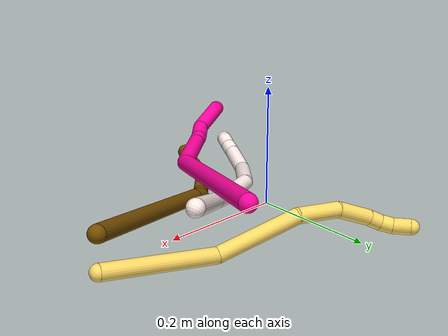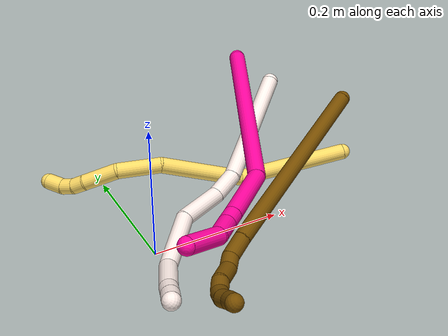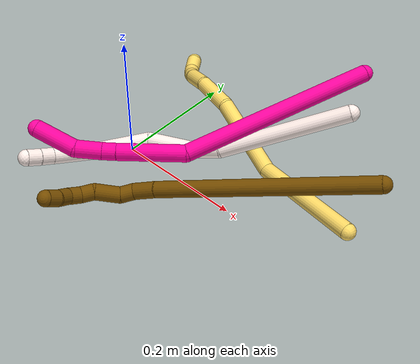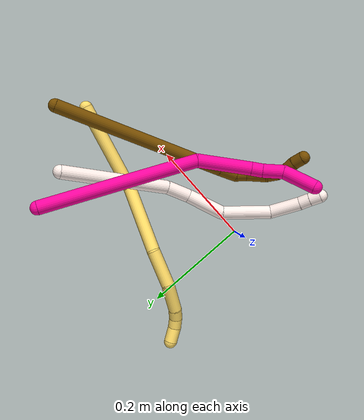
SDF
<sdf version="1.7">
 <world name="default">
  <model name="5">
   <static>0</static>
   <link name="5">
    <collision name="collision-cylinder-e_1_1_4">
     <pose>-0.051672 0.058278 0.039423 -0.976036 -0.633445 0.344526</pose>
     <geometry><cylinder><radius>0.0125</radius><length>0.174591</length></cylinder></geometry>
     <surface>
      <friction><ode><mu>1.16</mu><mu2>1.16</mu2><slip1>0</slip1><slip2>0</slip2></ode></friction>
      <contact><ode><kp>1e+06</kp><kd>1</kd><max_vel>0</max_vel><min_depth>0.001</min_depth></ode></contact>
     </surface>
    </collision>
    <visual name="visual-cylinder-e_1_1_4">
     <pose>-0.051672 0.058278 0.039423 -0.976036 -0.633445 0.344526</pose>
     <geometry><cylinder><radius>0.0125</radius><length>0.174591</length></cylinder></geometry>
     <material><ambient>1 0.858824 0.4 1</ambient></material>
    </visual>
    <collision name="collision-cylinder-e_2_4_5">
     <pose>-0.160602 0.141333 0.100885 -0.843834 -1.04585 0.506403</pose>
     <geometry><cylinder><radius>0.0125</radius><length>0.132333</length></cylinder></geometry>
     <surface>
      <friction><ode><mu>1.16</mu><mu2>1.16</mu2><slip1>0</slip1><slip2>0</slip2></ode></friction>
      <contact><ode><kp>1e+06</kp><kd>1</kd><max_vel>0</max_vel><min_depth>0.001</min_depth></ode></contact>
     </surface>
    </collision>
    <visual name="visual-cylinder-e_2_4_5">
     <pose>-0.160602 0.141333 0.100885 -0.843834 -1.04585 0.506403</pose>
     <geometry><cylinder><radius>0.0125</radius><length>0.132333</length></cylinder></geometry>
     <material><ambient>1 0.858824 0.4 1</ambient></material>
    </visual>
    <collision name="collision-cylinder-e_3_5_6">
     <pose>-0.240474 0.186075 0.13975 -0.870509 -0.713782 0.343342</pose>
     <geometry><cylinder><radius>0.0125</radius><length>0.069083</length></cylinder></geometry>
     <surface>
      <friction><ode><mu>1.16</mu><mu2>1.16</mu2><slip1>0</slip1><slip2>0</slip2></ode></friction>
      <contact><ode><kp>1e+06</kp><kd>1</kd><max_vel>0</max_vel><min_depth>0.001</min_depth></ode></contact>
     </surface>
    </collision>
    <visual name="visual-cylinder-e_3_5_6">
     <pose>-0.240474 0.186075 0.13975 -0.870509 -0.713782 0.343342</pose>
     <geometry><cylinder><radius>0.0125</radius><length>0.069083</length></cylinder></geometry>
     <material><ambient>1 0.858824 0.4 1</ambient></material>
    </visual>
    <collision name="collision-cylinder-e_4_6_7">
     <pose>-0.273352 0.222953 0.17579 -0.721786 -0.38136 0.145447</pose>
     <geometry><cylinder><radius>0.0125</radius><length>0.055157</length></cylinder></geometry>
     <surface>
      <friction><ode><mu>1.16</mu><mu2>1.16</mu2><slip1>0</slip1><slip2>0</slip2></ode></friction>
      <contact><ode><kp>1e+06</kp><kd>1</kd><max_vel>0</max_vel><min_depth>0.001</min_depth></ode></contact>
     </surface>
    </collision>
    <visual name="visual-cylinder-e_4_6_7">
     <pose>-0.273352 0.222953 0.17579 -0.721786 -0.38136 0.145447</pose>
     <geometry><cylinder><radius>0.0125</radius><length>0.055157</length></cylinder></geometry>
     <material><ambient>1 0.858824 0.4 1</ambient></material>
    </visual>
    <collision name="collision-cylinder-e_5_7_8">
     <pose>-0.286318 0.245052 0.203401 -0.553242 -0.267126 0.076254</pose>
     <geometry><cylinder><radius>0.0125</radius><length>0.020466</length></cylinder></geometry>
     <surface>
      <friction><ode><mu>1.16</mu><mu2>1.16</mu2><slip1>0</slip1><slip2>0</slip2></ode></friction>
      <contact><ode><kp>1e+06</kp><kd>1</kd><max_vel>0</max_vel><min_depth>0.001</min_depth></ode></contact>
     </surface>
    </collision>
    <visual name="visual-cylinder-e_5_7_8">
     <pose>-0.286318 0.245052 0.203401 -0.553242 -0.267126 0.076254</pose>
     <geometry><cylinder><radius>0.0125</radius><length>0.020466</length></cylinder></geometry>
     <material><ambient>1 0.858824 0.4 1</ambient></material>
    </visual>
    <collision name="collision-cylinder-e_6_8_9">
     <pose>-0.293091 0.253047 0.220557 -0.310361 -0.416816 0.066143</pose>
     <geometry><cylinder><radius>0.0125</radius><length>0.020118</length></cylinder></geometry>
     <surface>
      <friction><ode><mu>1.16</mu><mu2>1.16</mu2><slip1>0</slip1><slip2>0</slip2></ode></friction>
      <contact><ode><kp>1e+06</kp><kd>1</kd><max_vel>0</max_vel><min_depth>0.001</min_depth></ode></contact>
     </surface>
    </collision>
    <visual name="visual-cylinder-e_6_8_9">
     <pose>-0.293091 0.253047 0.220557 -0.310361 -0.416816 0.066143</pose>
     <geometry><cylinder><radius>0.0125</radius><length>0.020118</length></cylinder></geometry>
     <material><ambient>1 0.858824 0.4 1</ambient></material>
    </visual>
    <collision name="collision-cylinder-e_7_9_2">
     <pose>-0.305163 0.256001 0.240957 -0.012456 -0.602029 0.003867</pose>
     <geometry><cylinder><radius>0.0125</radius><length>0.028251</length></cylinder></geometry>
     <surface>
      <friction><ode><mu>1.16</mu><mu2>1.16</mu2><slip1>0</slip1><slip2>0</slip2></ode></friction>
      <contact><ode><kp>1e+06</kp><kd>1</kd><max_vel>0</max_vel><min_depth>0.001</min_depth></ode></contact>
     </surface>
    </collision>
    <visual name="visual-cylinder-e_7_9_2">
     <pose>-0.305163 0.256001 0.240957 -0.012456 -0.602029 0.003867</pose>
     <geometry><cylinder><radius>0.0125</radius><length>0.028251</length></cylinder></geometry>
     <material><ambient>1 0.858824 0.4 1</ambient></material>
    </visual>
    <collision name="collision-sphere-2">
     <pose>-0.313163 0.256146 0.252598 0 -0 0</pose>
     <geometry><sphere><radius>0.0125</radius></sphere></geometry>
     <surface>
      <friction><ode><mu>1.16</mu><mu2>1.16</mu2><slip1>0</slip1><slip2>0</slip2></ode></friction>
      <contact><ode><kp>1e+06</kp><kd>1</kd><max_vel>0</max_vel><min_depth>0.001</min_depth></ode></contact>
     </surface>
    </collision>
    <visual name="visual-sphere-2">
     <pose>-0.313163 0.256146 0.252598 0 -0 0</pose>
     <geometry><sphere><radius>0.0125</radius></sphere></geometry>
     <material><ambient>1 0.858824 0.4 1</ambient></material>
    </visual>
    <collision name="collision-sphere-9">
     <pose>-0.297164 0.255856 0.229316 0 -0 0</pose>
     <geometry><sphere><radius>0.0125</radius></sphere></geometry>
     <surface>
      <friction><ode><mu>1.16</mu><mu2>1.16</mu2><slip1>0</slip1><slip2>0</slip2></ode></friction>
      <contact><ode><kp>1e+06</kp><kd>1</kd><max_vel>0</max_vel><min_depth>0.001</min_depth></ode></contact>
     </surface>
    </collision>
    <visual name="visual-sphere-9">
     <pose>-0.297164 0.255856 0.229316 0 -0 0</pose>
     <geometry><sphere><radius>0.0125</radius></sphere></geometry>
     <material><ambient>1 0.858824 0.4 1</ambient></material>
    </visual>
    <collision name="collision-sphere-4">
     <pose>-0.103345 0.116555 0.078847 0 -0 0</pose>
     <geometry><sphere><radius>0.0125</radius></sphere></geometry>
     <surface>
      <friction><ode><mu>1.16</mu><mu2>1.16</mu2><slip1>0</slip1><slip2>0</slip2></ode></friction>
      <contact><ode><kp>1e+06</kp><kd>1</kd><max_vel>0</max_vel><min_depth>0.001</min_depth></ode></contact>
     </surface>
    </collision>
    <visual name="visual-sphere-4">
     <pose>-0.103345 0.116555 0.078847 0 -0 0</pose>
     <geometry><sphere><radius>0.0125</radius></sphere></geometry>
     <material><ambient>1 0.858824 0.4 1</ambient></material>
    </visual>
    <collision name="collision-sphere-1">
     <geometry><sphere><radius>0.0125</radius></sphere></geometry>
     <surface>
      <friction><ode><mu>1.16</mu><mu2>1.16</mu2><slip1>0</slip1><slip2>0</slip2></ode></friction>
      <contact><ode><kp>1e+06</kp><kd>1</kd><max_vel>0</max_vel><min_depth>0.001</min_depth></ode></contact>
     </surface>
    </collision>
    <visual name="visual-sphere-1">
     <geometry><sphere><radius>0.0125</radius></sphere></geometry>
     <material><ambient>1 0.858824 0.4 1</ambient></material>
    </visual>
    <collision name="collision-sphere-8">
     <pose>-0.289019 0.250238 0.211799 0 -0 0</pose>
     <geometry><sphere><radius>0.0125</radius></sphere></geometry>
     <surface>
      <friction><ode><mu>1.16</mu><mu2>1.16</mu2><slip1>0</slip1><slip2>0</slip2></ode></friction>
      <contact><ode><kp>1e+06</kp><kd>1</kd><max_vel>0</max_vel><min_depth>0.001</min_depth></ode></contact>
     </surface>
    </collision>
    <visual name="visual-sphere-8">
     <pose>-0.289019 0.250238 0.211799 0 -0 0</pose>
     <geometry><sphere><radius>0.0125</radius></sphere></geometry>
     <material><ambient>1 0.858824 0.4 1</ambient></material>
    </visual>
    <collision name="collision-sphere-5">
     <pose>-0.21786 0.16611 0.122924 0 -0 0</pose>
     <geometry><sphere><radius>0.0125</radius></sphere></geometry>
     <surface>
      <friction><ode><mu>1.16</mu><mu2>1.16</mu2><slip1>0</slip1><slip2>0</slip2></ode></friction>
      <contact><ode><kp>1e+06</kp><kd>1</kd><max_vel>0</max_vel><min_depth>0.001</min_depth></ode></contact>
     </surface>
    </collision>
    <visual name="visual-sphere-5">
     <pose>-0.21786 0.16611 0.122924 0 -0 0</pose>
     <geometry><sphere><radius>0.0125</radius></sphere></geometry>
     <material><ambient>1 0.858824 0.4 1</ambient></material>
    </visual>
    <collision name="collision-sphere-6">
     <pose>-0.263088 0.20604 0.156575 0 -0 0</pose>
     <geometry><sphere><radius>0.0125</radius></sphere></geometry>
     <surface>
      <friction><ode><mu>1.16</mu><mu2>1.16</mu2><slip1>0</slip1><slip2>0</slip2></ode></friction>
      <contact><ode><kp>1e+06</kp><kd>1</kd><max_vel>0</max_vel><min_depth>0.001</min_depth></ode></contact>
     </surface>
    </collision>
    <visual name="visual-sphere-6">
     <pose>-0.263088 0.20604 0.156575 0 -0 0</pose>
     <geometry><sphere><radius>0.0125</radius></sphere></geometry>
     <material><ambient>1 0.858824 0.4 1</ambient></material>
    </visual>
    <collision name="collision-sphere-7">
     <pose>-0.283617 0.239865 0.195004 0 -0 0</pose>
     <geometry><sphere><radius>0.0125</radius></sphere></geometry>
     <surface>
      <friction><ode><mu>1.16</mu><mu2>1.16</mu2><slip1>0</slip1><slip2>0</slip2></ode></friction>
      <contact><ode><kp>1e+06</kp><kd>1</kd><max_vel>0</max_vel><min_depth>0.001</min_depth></ode></contact>
     </surface>
    </collision>
    <visual name="visual-sphere-7">
     <pose>-0.283617 0.239865 0.195004 0 -0 0</pose>
     <geometry><sphere><radius>0.0125</radius></sphere></geometry>
     <material><ambient>1 0.858824 0.4 1</ambient></material>
    </visual>
    <inertial>
     <pose>-0.164684 0.142736 0.109982 0 -0 0</pose>
     <mass>0.5</mass>
     <inertia>
      <ixx>0.000626</ixx>
      <ixy>0</ixy>
      <ixz>0</ixz>
      <iyy>0.000732</iyy>
      <iyz>0</iyz>
      <izz>8.3e-05</izz>
     </inertia>
    </inertial>
   </link>
   <pose>0.365149 0.057867 0.034025 -2.28021 0.809645 -0.325125</pose>
  </model>
  <model name="11">
   <static>0</static>
   <link name="11">
    <collision name="collision-cylinder-e_1_1_4">
     <pose>-0.036578 -0.085779 -0.030313 1.91048 -0.382282 -0.534148</pose>
     <geometry><cylinder><radius>0.0125</radius><length>0.19611</length></cylinder></geometry>
     <surface>
      <friction><ode><mu>1.16</mu><mu2>1.16</mu2><slip1>0</slip1><slip2>0</slip2></ode></friction>
      <contact><ode><kp>1e+06</kp><kd>1</kd><max_vel>0</max_vel><min_depth>0.001</min_depth></ode></contact>
     </surface>
    </collision>
    <visual name="visual-cylinder-e_1_1_4">
     <pose>-0.036578 -0.085779 -0.030313 1.91048 -0.382282 -0.534148</pose>
     <geometry><cylinder><radius>0.0125</radius><length>0.19611</length></cylinder></geometry>
     <material><ambient>1 0.933333 0.909804 1</ambient></material>
    </visual>
    <collision name="collision-cylinder-e_2_4_5">
     <pose>-0.076757 -0.190193 -0.071374 2.09396 -0.165814 -0.285753</pose>
     <geometry><cylinder><radius>0.0125</radius><length>0.043624</length></cylinder></geometry>
     <surface>
      <friction><ode><mu>1.16</mu><mu2>1.16</mu2><slip1>0</slip1><slip2>0</slip2></ode></friction>
      <contact><ode><kp>1e+06</kp><kd>1</kd><max_vel>0</max_vel><min_depth>0.001</min_depth></ode></contact>
     </surface>
    </collision>
    <visual name="visual-cylinder-e_2_4_5">
     <pose>-0.076757 -0.190193 -0.071374 2.09396 -0.165814 -0.285753</pose>
     <geometry><cylinder><radius>0.0125</radius><length>0.043624</length></cylinder></geometry>
     <material><ambient>1 0.933333 0.909804 1</ambient></material>
    </visual>
    <collision name="collision-cylinder-e_3_5_6">
     <pose>-0.083849 -0.234799 -0.105255 2.29847 -0.100056 -0.222382</pose>
     <geometry><cylinder><radius>0.0125</radius><length>0.069909</length></cylinder></geometry>
     <surface>
      <friction><ode><mu>1.16</mu><mu2>1.16</mu2><slip1>0</slip1><slip2>0</slip2></ode></friction>
      <contact><ode><kp>1e+06</kp><kd>1</kd><max_vel>0</max_vel><min_depth>0.001</min_depth></ode></contact>
     </surface>
    </collision>
    <visual name="visual-cylinder-e_3_5_6">
     <pose>-0.083849 -0.234799 -0.105255 2.29847 -0.100056 -0.222382</pose>
     <geometry><cylinder><radius>0.0125</radius><length>0.069909</length></cylinder></geometry>
     <material><ambient>1 0.933333 0.909804 1</ambient></material>
    </visual>
    <collision name="collision-cylinder-e_4_6_7">
     <pose>-0.112144 -0.293596 -0.149353 2.13916 -0.567052 -0.977556</pose>
     <geometry><cylinder><radius>0.0125</radius><length>0.092354</length></cylinder></geometry>
     <surface>
      <friction><ode><mu>1.16</mu><mu2>1.16</mu2><slip1>0</slip1><slip2>0</slip2></ode></friction>
      <contact><ode><kp>1e+06</kp><kd>1</kd><max_vel>0</max_vel><min_depth>0.001</min_depth></ode></contact>
     </surface>
    </collision>
    <visual name="visual-cylinder-e_4_6_7">
     <pose>-0.112144 -0.293596 -0.149353 2.13916 -0.567052 -0.977556</pose>
     <geometry><cylinder><radius>0.0125</radius><length>0.092354</length></cylinder></geometry>
     <material><ambient>1 0.933333 0.909804 1</ambient></material>
    </visual>
    <collision name="collision-cylinder-e_5_7_8">
     <pose>-0.158503 -0.336086 -0.186579 2.60541 -0.850501 -2.05113</pose>
     <geometry><cylinder><radius>0.0125</radius><length>0.057356</length></cylinder></geometry>
     <surface>
      <friction><ode><mu>1.16</mu><mu2>1.16</mu2><slip1>0</slip1><slip2>0</slip2></ode></friction>
      <contact><ode><kp>1e+06</kp><kd>1</kd><max_vel>0</max_vel><min_depth>0.001</min_depth></ode></contact>
     </surface>
    </collision>
    <visual name="visual-cylinder-e_5_7_8">
     <pose>-0.158503 -0.336086 -0.186579 2.60541 -0.850501 -2.05113</pose>
     <geometry><cylinder><radius>0.0125</radius><length>0.057356</length></cylinder></geometry>
     <material><ambient>1 0.933333 0.909804 1</ambient></material>
    </visual>
    <collision name="collision-cylinder-e_6_8_9">
     <pose>-0.188036 -0.34779 -0.208599 2.80101 -0.917322 -2.47138</pose>
     <geometry><cylinder><radius>0.0125</radius><length>0.020098</length></cylinder></geometry>
     <surface>
      <friction><ode><mu>1.16</mu><mu2>1.16</mu2><slip1>0</slip1><slip2>0</slip2></ode></friction>
      <contact><ode><kp>1e+06</kp><kd>1</kd><max_vel>0</max_vel><min_depth>0.001</min_depth></ode></contact>
     </surface>
    </collision>
    <visual name="visual-cylinder-e_6_8_9">
     <pose>-0.188036 -0.34779 -0.208599 2.80101 -0.917322 -2.47138</pose>
     <geometry><cylinder><radius>0.0125</radius><length>0.020098</length></cylinder></geometry>
     <material><ambient>1 0.933333 0.909804 1</ambient></material>
    </visual>
    <collision name="collision-cylinder-e_7_9_2">
     <pose>-0.203949 -0.352059 -0.220492 2.79317 -0.88243 -2.42814</pose>
     <geometry><cylinder><radius>0.0125</radius><length>0.020548</length></cylinder></geometry>
     <surface>
      <friction><ode><mu>1.16</mu><mu2>1.16</mu2><slip1>0</slip1><slip2>0</slip2></ode></friction>
      <contact><ode><kp>1e+06</kp><kd>1</kd><max_vel>0</max_vel><min_depth>0.001</min_depth></ode></contact>
     </surface>
    </collision>
    <visual name="visual-cylinder-e_7_9_2">
     <pose>-0.203949 -0.352059 -0.220492 2.79317 -0.88243 -2.42814</pose>
     <geometry><cylinder><radius>0.0125</radius><length>0.020548</length></cylinder></geometry>
     <material><ambient>1 0.933333 0.909804 1</ambient></material>
    </visual>
    <collision name="collision-sphere-2">
     <pose>-0.211884 -0.354288 -0.226627 0 -0 0</pose>
     <geometry><sphere><radius>0.0125</radius></sphere></geometry>
     <surface>
      <friction><ode><mu>1.16</mu><mu2>1.16</mu2><slip1>0</slip1><slip2>0</slip2></ode></friction>
      <contact><ode><kp>1e+06</kp><kd>1</kd><max_vel>0</max_vel><min_depth>0.001</min_depth></ode></contact>
     </surface>
    </collision>
    <visual name="visual-sphere-2">
     <pose>-0.211884 -0.354288 -0.226627 0 -0 0</pose>
     <geometry><sphere><radius>0.0125</radius></sphere></geometry>
     <material><ambient>1 0.933333 0.909804 1</ambient></material>
    </visual>
    <collision name="collision-sphere-9">
     <pose>-0.196015 -0.349831 -0.214358 0 -0 0</pose>
     <geometry><sphere><radius>0.0125</radius></sphere></geometry>
     <surface>
      <friction><ode><mu>1.16</mu><mu2>1.16</mu2><slip1>0</slip1><slip2>0</slip2></ode></friction>
      <contact><ode><kp>1e+06</kp><kd>1</kd><max_vel>0</max_vel><min_depth>0.001</min_depth></ode></contact>
     </surface>
    </collision>
    <visual name="visual-sphere-9">
     <pose>-0.196015 -0.349831 -0.214358 0 -0 0</pose>
     <geometry><sphere><radius>0.0125</radius></sphere></geometry>
     <material><ambient>1 0.933333 0.909804 1</ambient></material>
    </visual>
    <collision name="collision-sphere-4">
     <pose>-0.073157 -0.171557 -0.060625 0 -0 0</pose>
     <geometry><sphere><radius>0.0125</radius></sphere></geometry>
     <surface>
      <friction><ode><mu>1.16</mu><mu2>1.16</mu2><slip1>0</slip1><slip2>0</slip2></ode></friction>
      <contact><ode><kp>1e+06</kp><kd>1</kd><max_vel>0</max_vel><min_depth>0.001</min_depth></ode></contact>
     </surface>
    </collision>
    <visual name="visual-sphere-4">
     <pose>-0.073157 -0.171557 -0.060625 0 -0 0</pose>
     <geometry><sphere><radius>0.0125</radius></sphere></geometry>
     <material><ambient>1 0.933333 0.909804 1</ambient></material>
    </visual>
    <collision name="collision-sphere-1">
     <geometry><sphere><radius>0.0125</radius></sphere></geometry>
     <surface>
      <friction><ode><mu>1.16</mu><mu2>1.16</mu2><slip1>0</slip1><slip2>0</slip2></ode></friction>
      <contact><ode><kp>1e+06</kp><kd>1</kd><max_vel>0</max_vel><min_depth>0.001</min_depth></ode></contact>
     </surface>
    </collision>
    <visual name="visual-sphere-1">
     <geometry><sphere><radius>0.0125</radius></sphere></geometry>
     <material><ambient>1 0.933333 0.909804 1</ambient></material>
    </visual>
    <collision name="collision-sphere-8">
     <pose>-0.180058 -0.34575 -0.202841 0 -0 0</pose>
     <geometry><sphere><radius>0.0125</radius></sphere></geometry>
     <surface>
      <friction><ode><mu>1.16</mu><mu2>1.16</mu2><slip1>0</slip1><slip2>0</slip2></ode></friction>
      <contact><ode><kp>1e+06</kp><kd>1</kd><max_vel>0</max_vel><min_depth>0.001</min_depth></ode></contact>
     </surface>
    </collision>
    <visual name="visual-sphere-8">
     <pose>-0.180058 -0.34575 -0.202841 0 -0 0</pose>
     <geometry><sphere><radius>0.0125</radius></sphere></geometry>
     <material><ambient>1 0.933333 0.909804 1</ambient></material>
    </visual>
    <collision name="collision-sphere-5">
     <pose>-0.080357 -0.208828 -0.082122 0 -0 0</pose>
     <geometry><sphere><radius>0.0125</radius></sphere></geometry>
     <surface>
      <friction><ode><mu>1.16</mu><mu2>1.16</mu2><slip1>0</slip1><slip2>0</slip2></ode></friction>
      <contact><ode><kp>1e+06</kp><kd>1</kd><max_vel>0</max_vel><min_depth>0.001</min_depth></ode></contact>
     </surface>
    </collision>
    <visual name="visual-sphere-5">
     <pose>-0.080357 -0.208828 -0.082122 0 -0 0</pose>
     <geometry><sphere><radius>0.0125</radius></sphere></geometry>
     <material><ambient>1 0.933333 0.909804 1</ambient></material>
    </visual>
    <collision name="collision-sphere-6">
     <pose>-0.08734 -0.26077 -0.128388 0 -0 0</pose>
     <geometry><sphere><radius>0.0125</radius></sphere></geometry>
     <surface>
      <friction><ode><mu>1.16</mu><mu2>1.16</mu2><slip1>0</slip1><slip2>0</slip2></ode></friction>
      <contact><ode><kp>1e+06</kp><kd>1</kd><max_vel>0</max_vel><min_depth>0.001</min_depth></ode></contact>
     </surface>
    </collision>
    <visual name="visual-sphere-6">
     <pose>-0.08734 -0.26077 -0.128388 0 -0 0</pose>
     <geometry><sphere><radius>0.0125</radius></sphere></geometry>
     <material><ambient>1 0.933333 0.909804 1</ambient></material>
    </visual>
    <collision name="collision-sphere-7">
     <pose>-0.136948 -0.326423 -0.170318 0 -0 0</pose>
     <geometry><sphere><radius>0.0125</radius></sphere></geometry>
     <surface>
      <friction><ode><mu>1.16</mu><mu2>1.16</mu2><slip1>0</slip1><slip2>0</slip2></ode></friction>
      <contact><ode><kp>1e+06</kp><kd>1</kd><max_vel>0</max_vel><min_depth>0.001</min_depth></ode></contact>
     </surface>
    </collision>
    <visual name="visual-sphere-7">
     <pose>-0.136948 -0.326423 -0.170318 0 -0 0</pose>
     <geometry><sphere><radius>0.0125</radius></sphere></geometry>
     <material><ambient>1 0.933333 0.909804 1</ambient></material>
    </visual>
    <inertial>
     <pose>-0.087603 -0.204298 -0.099269 0 -0 0</pose>
     <mass>0.5</mass>
     <inertia>
      <ixx>0.000186</ixx>
      <ixy>0</ixy>
      <ixz>0</ixz>
      <iyy>-0.000469</iyy>
      <iyz>0</iyz>
      <izz>0.00092</izz>
     </inertia>
    </inertial>
   </link>
   <pose>0.285771 0.161295 0.135763 2.3677 0.053548 1.85308</pose>
  </model>
  <model name="12">
   <static>0</static>
   <link name="12">
    <collision name="collision-cylinder-e_1_1_4">
     <pose>-0.062673 -0.145221 -0.033473 1.79734 -0.398088 -0.496539</pose>
     <geometry><cylinder><radius>0.0125</radius><length>0.323342</length></cylinder></geometry>
     <surface>
      <friction><ode><mu>1.16</mu><mu2>1.16</mu2><slip1>0</slip1><slip2>0</slip2></ode></friction>
      <contact><ode><kp>1e+06</kp><kd>1</kd><max_vel>0</max_vel><min_depth>0.001</min_depth></ode></contact>
     </surface>
    </collision>
    <visual name="visual-cylinder-e_1_1_4">
     <pose>-0.062673 -0.145221 -0.033473 1.79734 -0.398088 -0.496539</pose>
     <geometry><cylinder><radius>0.0125</radius><length>0.323342</length></cylinder></geometry>
     <material><ambient>0.466667 0.301961 0 1</ambient></material>
    </visual>
    <collision name="collision-cylinder-e_2_4_5">
     <pose>-0.131139 -0.306277 -0.07093 1.81721 -0.340959 -0.434651</pose>
     <geometry><cylinder><radius>0.0125</radius><length>0.034652</length></cylinder></geometry>
     <surface>
      <friction><ode><mu>1.16</mu><mu2>1.16</mu2><slip1>0</slip1><slip2>0</slip2></ode></friction>
      <contact><ode><kp>1e+06</kp><kd>1</kd><max_vel>0</max_vel><min_depth>0.001</min_depth></ode></contact>
     </surface>
    </collision>
    <visual name="visual-cylinder-e_2_4_5">
     <pose>-0.131139 -0.306277 -0.07093 1.81721 -0.340959 -0.434651</pose>
     <geometry><cylinder><radius>0.0125</radius><length>0.034652</length></cylinder></geometry>
     <material><ambient>0.466667 0.301961 0 1</ambient></material>
    </visual>
    <collision name="collision-cylinder-e_3_5_6">
     <pose>-0.138599 -0.332777 -0.073737 1.46099 -0.154104 -0.138102</pose>
     <geometry><cylinder><radius>0.0125</radius><length>0.021714</length></cylinder></geometry>
     <surface>
      <friction><ode><mu>1.16</mu><mu2>1.16</mu2><slip1>0</slip1><slip2>0</slip2></ode></friction>
      <contact><ode><kp>1e+06</kp><kd>1</kd><max_vel>0</max_vel><min_depth>0.001</min_depth></ode></contact>
     </surface>
    </collision>
    <visual name="visual-cylinder-e_3_5_6">
     <pose>-0.138599 -0.332777 -0.073737 1.46099 -0.154104 -0.138102</pose>
     <geometry><cylinder><radius>0.0125</radius><length>0.021714</length></cylinder></geometry>
     <material><ambient>0.466667 0.301961 0 1</ambient></material>
    </visual>
    <collision name="collision-cylinder-e_4_6_7">
     <pose>-0.149549 -0.359027 -0.066197 1.18316 -0.503885 -0.342494</pose>
     <geometry><cylinder><radius>0.0125</radius><length>0.038451</length></cylinder></geometry>
     <surface>
      <friction><ode><mu>1.16</mu><mu2>1.16</mu2><slip1>0</slip1><slip2>0</slip2></ode></friction>
      <contact><ode><kp>1e+06</kp><kd>1</kd><max_vel>0</max_vel><min_depth>0.001</min_depth></ode></contact>
     </surface>
    </collision>
    <visual name="visual-cylinder-e_4_6_7">
     <pose>-0.149549 -0.359027 -0.066197 1.18316 -0.503885 -0.342494</pose>
     <geometry><cylinder><radius>0.0125</radius><length>0.038451</length></cylinder></geometry>
     <material><ambient>0.466667 0.301961 0 1</ambient></material>
    </visual>
    <collision name="collision-cylinder-e_5_7_8">
     <pose>-0.160382 -0.384528 -0.057006 1.29296 -0.149273 -0.11274</pose>
     <geometry><cylinder><radius>0.0125</radius><length>0.020851</length></cylinder></geometry>
     <surface>
      <friction><ode><mu>1.16</mu><mu2>1.16</mu2><slip1>0</slip1><slip2>0</slip2></ode></friction>
      <contact><ode><kp>1e+06</kp><kd>1</kd><max_vel>0</max_vel><min_depth>0.001</min_depth></ode></contact>
     </surface>
    </collision>
    <visual name="visual-cylinder-e_5_7_8">
     <pose>-0.160382 -0.384528 -0.057006 1.29296 -0.149273 -0.11274</pose>
     <geometry><cylinder><radius>0.0125</radius><length>0.020851</length></cylinder></geometry>
     <material><ambient>0.466667 0.301961 0 1</ambient></material>
    </visual>
    <collision name="collision-cylinder-e_6_8_9">
     <pose>-0.163703 -0.401716 -0.04729 0.812687 -0.174984 -0.075451</pose>
     <geometry><cylinder><radius>0.0125</radius><length>0.020346</length></cylinder></geometry>
     <surface>
      <friction><ode><mu>1.16</mu><mu2>1.16</mu2><slip1>0</slip1><slip2>0</slip2></ode></friction>
      <contact><ode><kp>1e+06</kp><kd>1</kd><max_vel>0</max_vel><min_depth>0.001</min_depth></ode></contact>
     </surface>
    </collision>
    <visual name="visual-cylinder-e_6_8_9">
     <pose>-0.163703 -0.401716 -0.04729 0.812687 -0.174984 -0.075451</pose>
     <geometry><cylinder><radius>0.0125</radius><length>0.020346</length></cylinder></geometry>
     <material><ambient>0.466667 0.301961 0 1</ambient></material>
    </visual>
    <collision name="collision-cylinder-e_7_9_10">
     <pose>-0.165576 -0.413711 -0.031433 0.484398 -0.009999 -0.00247</pose>
     <geometry><cylinder><radius>0.0125</radius><length>0.020272</length></cylinder></geometry>
     <surface>
      <friction><ode><mu>1.16</mu><mu2>1.16</mu2><slip1>0</slip1><slip2>0</slip2></ode></friction>
      <contact><ode><kp>1e+06</kp><kd>1</kd><max_vel>0</max_vel><min_depth>0.001</min_depth></ode></contact>
     </surface>
    </collision>
    <visual name="visual-cylinder-e_7_9_10">
     <pose>-0.165576 -0.413711 -0.031433 0.484398 -0.009999 -0.00247</pose>
     <geometry><cylinder><radius>0.0125</radius><length>0.020272</length></cylinder></geometry>
     <material><ambient>0.466667 0.301961 0 1</ambient></material>
    </visual>
    <collision name="collision-cylinder-e_8_10_2">
     <pose>-0.167627 -0.423869 -0.014075 0.575174 -0.192595 -0.057128</pose>
     <geometry><cylinder><radius>0.0125</radius><length>0.020372</length></cylinder></geometry>
     <surface>
      <friction><ode><mu>1.16</mu><mu2>1.16</mu2><slip1>0</slip1><slip2>0</slip2></ode></friction>
      <contact><ode><kp>1e+06</kp><kd>1</kd><max_vel>0</max_vel><min_depth>0.001</min_depth></ode></contact>
     </surface>
    </collision>
    <visual name="visual-cylinder-e_8_10_2">
     <pose>-0.167627 -0.423869 -0.014075 0.575174 -0.192595 -0.057128</pose>
     <geometry><cylinder><radius>0.0125</radius><length>0.020372</length></cylinder></geometry>
     <material><ambient>0.466667 0.301961 0 1</ambient></material>
    </visual>
    <collision name="collision-sphere-2">
     <pose>-0.169576 -0.429308 -0.005686 0 -0 0</pose>
     <geometry><sphere><radius>0.0125</radius></sphere></geometry>
     <surface>
      <friction><ode><mu>1.16</mu><mu2>1.16</mu2><slip1>0</slip1><slip2>0</slip2></ode></friction>
      <contact><ode><kp>1e+06</kp><kd>1</kd><max_vel>0</max_vel><min_depth>0.001</min_depth></ode></contact>
     </surface>
    </collision>
    <visual name="visual-sphere-2">
     <pose>-0.169576 -0.429308 -0.005686 0 -0 0</pose>
     <geometry><sphere><radius>0.0125</radius></sphere></geometry>
     <material><ambient>0.466667 0.301961 0 1</ambient></material>
    </visual>
    <collision name="collision-sphere-10">
     <pose>-0.165677 -0.418431 -0.022463 0 -0 0</pose>
     <geometry><sphere><radius>0.0125</radius></sphere></geometry>
     <surface>
      <friction><ode><mu>1.16</mu><mu2>1.16</mu2><slip1>0</slip1><slip2>0</slip2></ode></friction>
      <contact><ode><kp>1e+06</kp><kd>1</kd><max_vel>0</max_vel><min_depth>0.001</min_depth></ode></contact>
     </surface>
    </collision>
    <visual name="visual-sphere-10">
     <pose>-0.165677 -0.418431 -0.022463 0 -0 0</pose>
     <geometry><sphere><radius>0.0125</radius></sphere></geometry>
     <material><ambient>0.466667 0.301961 0 1</ambient></material>
    </visual>
    <collision name="collision-sphere-9">
     <pose>-0.165474 -0.408991 -0.040403 0 -0 0</pose>
     <geometry><sphere><radius>0.0125</radius></sphere></geometry>
     <surface>
      <friction><ode><mu>1.16</mu><mu2>1.16</mu2><slip1>0</slip1><slip2>0</slip2></ode></friction>
      <contact><ode><kp>1e+06</kp><kd>1</kd><max_vel>0</max_vel><min_depth>0.001</min_depth></ode></contact>
     </surface>
    </collision>
    <visual name="visual-sphere-9">
     <pose>-0.165474 -0.408991 -0.040403 0 -0 0</pose>
     <geometry><sphere><radius>0.0125</radius></sphere></geometry>
     <material><ambient>0.466667 0.301961 0 1</ambient></material>
    </visual>
    <collision name="collision-sphere-4">
     <pose>-0.125346 -0.290442 -0.066947 0 -0 0</pose>
     <geometry><sphere><radius>0.0125</radius></sphere></geometry>
     <surface>
      <friction><ode><mu>1.16</mu><mu2>1.16</mu2><slip1>0</slip1><slip2>0</slip2></ode></friction>
      <contact><ode><kp>1e+06</kp><kd>1</kd><max_vel>0</max_vel><min_depth>0.001</min_depth></ode></contact>
     </surface>
    </collision>
    <visual name="visual-sphere-4">
     <pose>-0.125346 -0.290442 -0.066947 0 -0 0</pose>
     <geometry><sphere><radius>0.0125</radius></sphere></geometry>
     <material><ambient>0.466667 0.301961 0 1</ambient></material>
    </visual>
    <collision name="collision-sphere-1">
     <geometry><sphere><radius>0.0125</radius></sphere></geometry>
     <surface>
      <friction><ode><mu>1.16</mu><mu2>1.16</mu2><slip1>0</slip1><slip2>0</slip2></ode></friction>
      <contact><ode><kp>1e+06</kp><kd>1</kd><max_vel>0</max_vel><min_depth>0.001</min_depth></ode></contact>
     </surface>
    </collision>
    <visual name="visual-sphere-1">
     <geometry><sphere><radius>0.0125</radius></sphere></geometry>
     <material><ambient>0.466667 0.301961 0 1</ambient></material>
    </visual>
    <collision name="collision-sphere-8">
     <pose>-0.161932 -0.394442 -0.054178 0 -0 0</pose>
     <geometry><sphere><radius>0.0125</radius></sphere></geometry>
     <surface>
      <friction><ode><mu>1.16</mu><mu2>1.16</mu2><slip1>0</slip1><slip2>0</slip2></ode></friction>
      <contact><ode><kp>1e+06</kp><kd>1</kd><max_vel>0</max_vel><min_depth>0.001</min_depth></ode></contact>
     </surface>
    </collision>
    <visual name="visual-sphere-8">
     <pose>-0.161932 -0.394442 -0.054178 0 -0 0</pose>
     <geometry><sphere><radius>0.0125</radius></sphere></geometry>
     <material><ambient>0.466667 0.301961 0 1</ambient></material>
    </visual>
    <collision name="collision-sphere-5">
     <pose>-0.136933 -0.322113 -0.074913 0 -0 0</pose>
     <geometry><sphere><radius>0.0125</radius></sphere></geometry>
     <surface>
      <friction><ode><mu>1.16</mu><mu2>1.16</mu2><slip1>0</slip1><slip2>0</slip2></ode></friction>
      <contact><ode><kp>1e+06</kp><kd>1</kd><max_vel>0</max_vel><min_depth>0.001</min_depth></ode></contact>
     </surface>
    </collision>
    <visual name="visual-sphere-5">
     <pose>-0.136933 -0.322113 -0.074913 0 -0 0</pose>
     <geometry><sphere><radius>0.0125</radius></sphere></geometry>
     <material><ambient>0.466667 0.301961 0 1</ambient></material>
    </visual>
    <collision name="collision-sphere-6">
     <pose>-0.140266 -0.343441 -0.072561 0 -0 0</pose>
     <geometry><sphere><radius>0.0125</radius></sphere></geometry>
     <surface>
      <friction><ode><mu>1.16</mu><mu2>1.16</mu2><slip1>0</slip1><slip2>0</slip2></ode></friction>
      <contact><ode><kp>1e+06</kp><kd>1</kd><max_vel>0</max_vel><min_depth>0.001</min_depth></ode></contact>
     </surface>
    </collision>
    <visual name="visual-sphere-6">
     <pose>-0.140266 -0.343441 -0.072561 0 -0 0</pose>
     <geometry><sphere><radius>0.0125</radius></sphere></geometry>
     <material><ambient>0.466667 0.301961 0 1</ambient></material>
    </visual>
    <collision name="collision-sphere-7">
     <pose>-0.158831 -0.374614 -0.059833 0 -0 0</pose>
     <geometry><sphere><radius>0.0125</radius></sphere></geometry>
     <surface>
      <friction><ode><mu>1.16</mu><mu2>1.16</mu2><slip1>0</slip1><slip2>0</slip2></ode></friction>
      <contact><ode><kp>1e+06</kp><kd>1</kd><max_vel>0</max_vel><min_depth>0.001</min_depth></ode></contact>
     </surface>
    </collision>
    <visual name="visual-sphere-7">
     <pose>-0.158831 -0.374614 -0.059833 0 -0 0</pose>
     <geometry><sphere><radius>0.0125</radius></sphere></geometry>
     <material><ambient>0.466667 0.301961 0 1</ambient></material>
    </visual>
    <inertial>
     <pose>-0.09403 -0.223626 -0.041005 0 -0 0</pose>
     <mass>0.5</mass>
     <inertia>
      <ixx>0.00105</ixx>
      <ixy>0</ixy>
      <ixz>0</ixz>
      <iyy>-0.001323</iyy>
      <iyz>0</iyz>
      <izz>0.003659</izz>
     </inertia>
    </inertial>
   </link>
   <pose>0.383997 0.094625 0.110032 0.449351 0.597813 -0.335708</pose>
  </model>
  <model name="18">
   <static>0</static>
   <link name="18">
    <collision name="collision-cylinder-e_1_1_4">
     <pose>0.01639 0.017115 -0.140804 -3.02063 0.115041 -1.52052</pose>
     <geometry><cylinder><radius>0.0125</radius><length>0.285569</length></cylinder></geometry>
     <surface>
      <friction><ode><mu>1.16</mu><mu2>1.16</mu2><slip1>0</slip1><slip2>0</slip2></ode></friction>
      <contact><ode><kp>1e+06</kp><kd>1</kd><max_vel>0</max_vel><min_depth>0.001</min_depth></ode></contact>
     </surface>
    </collision>
    <visual name="visual-cylinder-e_1_1_4">
     <pose>0.01639 0.017115 -0.140804 -3.02063 0.115041 -1.52052</pose>
     <geometry><cylinder><radius>0.0125</radius><length>0.285569</length></cylinder></geometry>
     <material><ambient>1 0.007843 0.615686 1</ambient></material>
    </visual>
    <collision name="collision-cylinder-e_2_4_5">
     <pose>0.018737 0.027775 -0.327358 3.0014 -0.295074 -2.2589</pose>
     <geometry><cylinder><radius>0.0125</radius><length>0.096579</length></cylinder></geometry>
     <surface>
      <friction><ode><mu>1.16</mu><mu2>1.16</mu2><slip1>0</slip1><slip2>0</slip2></ode></friction>
      <contact><ode><kp>1e+06</kp><kd>1</kd><max_vel>0</max_vel><min_depth>0.001</min_depth></ode></contact>
     </surface>
    </collision>
    <visual name="visual-cylinder-e_2_4_5">
     <pose>0.018737 0.027775 -0.327358 3.0014 -0.295074 -2.2589</pose>
     <geometry><cylinder><radius>0.0125</radius><length>0.096579</length></cylinder></geometry>
     <material><ambient>1 0.007843 0.615686 1</ambient></material>
    </visual>
    <collision name="collision-cylinder-e_3_5_6">
     <pose>0.001437 0.019801 -0.382745 2.98543 -0.322151 -2.24407</pose>
     <geometry><cylinder><radius>0.0125</radius><length>0.020572</length></cylinder></geometry>
     <surface>
      <friction><ode><mu>1.16</mu><mu2>1.16</mu2><slip1>0</slip1><slip2>0</slip2></ode></friction>
      <contact><ode><kp>1e+06</kp><kd>1</kd><max_vel>0</max_vel><min_depth>0.001</min_depth></ode></contact>
     </surface>
    </collision>
    <visual name="visual-cylinder-e_3_5_6">
     <pose>0.001437 0.019801 -0.382745 2.98543 -0.322151 -2.24407</pose>
     <geometry><cylinder><radius>0.0125</radius><length>0.020572</length></cylinder></geometry>
     <material><ambient>1 0.007843 0.615686 1</ambient></material>
    </visual>
    <collision name="collision-cylinder-e_4_6_7">
     <pose>-0.005264 0.012919 -0.409902 2.84444 -0.185838 -1.11371</pose>
     <geometry><cylinder><radius>0.0125</radius><length>0.037286</length></cylinder></geometry>
     <surface>
      <friction><ode><mu>1.16</mu><mu2>1.16</mu2><slip1>0</slip1><slip2>0</slip2></ode></friction>
      <contact><ode><kp>1e+06</kp><kd>1</kd><max_vel>0</max_vel><min_depth>0.001</min_depth></ode></contact>
     </surface>
    </collision>
    <visual name="visual-cylinder-e_4_6_7">
     <pose>-0.005264 0.012919 -0.409902 2.84444 -0.185838 -1.11371</pose>
     <geometry><cylinder><radius>0.0125</radius><length>0.037286</length></cylinder></geometry>
     <material><ambient>1 0.007843 0.615686 1</ambient></material>
    </visual>
    <collision name="collision-cylinder-e_5_7_2">
     <pose>-0.024068 -0.006361 -0.449107 2.57108 -0.537531 -1.50814</pose>
     <geometry><cylinder><radius>0.0125</radius><length>0.059995</length></cylinder></geometry>
     <surface>
      <friction><ode><mu>1.16</mu><mu2>1.16</mu2><slip1>0</slip1><slip2>0</slip2></ode></friction>
      <contact><ode><kp>1e+06</kp><kd>1</kd><max_vel>0</max_vel><min_depth>0.001</min_depth></ode></contact>
     </surface>
    </collision>
    <visual name="visual-cylinder-e_5_7_2">
     <pose>-0.024068 -0.006361 -0.449107 2.57108 -0.537531 -1.50814</pose>
     <geometry><cylinder><radius>0.0125</radius><length>0.059995</length></cylinder></geometry>
     <material><ambient>1 0.007843 0.615686 1</ambient></material>
    </visual>
    <collision name="collision-sphere-2">
     <pose>-0.039427 -0.020277 -0.470793 0 -0 0</pose>
     <geometry><sphere><radius>0.0125</radius></sphere></geometry>
     <surface>
      <friction><ode><mu>1.16</mu><mu2>1.16</mu2><slip1>0</slip1><slip2>0</slip2></ode></friction>
      <contact><ode><kp>1e+06</kp><kd>1</kd><max_vel>0</max_vel><min_depth>0.001</min_depth></ode></contact>
     </surface>
    </collision>
    <visual name="visual-sphere-2">
     <pose>-0.039427 -0.020277 -0.470793 0 -0 0</pose>
     <geometry><sphere><radius>0.0125</radius></sphere></geometry>
     <material><ambient>1 0.007843 0.615686 1</ambient></material>
    </visual>
    <collision name="collision-sphere-7">
     <pose>-0.008709 0.007555 -0.42742 0 -0 0</pose>
     <geometry><sphere><radius>0.0125</radius></sphere></geometry>
     <surface>
      <friction><ode><mu>1.16</mu><mu2>1.16</mu2><slip1>0</slip1><slip2>0</slip2></ode></friction>
      <contact><ode><kp>1e+06</kp><kd>1</kd><max_vel>0</max_vel><min_depth>0.001</min_depth></ode></contact>
     </surface>
    </collision>
    <visual name="visual-sphere-7">
     <pose>-0.008709 0.007555 -0.42742 0 -0 0</pose>
     <geometry><sphere><radius>0.0125</radius></sphere></geometry>
     <material><ambient>1 0.007843 0.615686 1</ambient></material>
    </visual>
    <collision name="collision-sphere-6">
     <pose>-0.00182 0.018284 -0.392383 0 -0 0</pose>
     <geometry><sphere><radius>0.0125</radius></sphere></geometry>
     <surface>
      <friction><ode><mu>1.16</mu><mu2>1.16</mu2><slip1>0</slip1><slip2>0</slip2></ode></friction>
      <contact><ode><kp>1e+06</kp><kd>1</kd><max_vel>0</max_vel><min_depth>0.001</min_depth></ode></contact>
     </surface>
    </collision>
    <visual name="visual-sphere-6">
     <pose>-0.00182 0.018284 -0.392383 0 -0 0</pose>
     <geometry><sphere><radius>0.0125</radius></sphere></geometry>
     <material><ambient>1 0.007843 0.615686 1</ambient></material>
    </visual>
    <collision name="collision-sphere-5">
     <pose>0.004693 0.021319 -0.373107 0 -0 0</pose>
     <geometry><sphere><radius>0.0125</radius></sphere></geometry>
     <surface>
      <friction><ode><mu>1.16</mu><mu2>1.16</mu2><slip1>0</slip1><slip2>0</slip2></ode></friction>
      <contact><ode><kp>1e+06</kp><kd>1</kd><max_vel>0</max_vel><min_depth>0.001</min_depth></ode></contact>
     </surface>
    </collision>
    <visual name="visual-sphere-5">
     <pose>0.004693 0.021319 -0.373107 0 -0 0</pose>
     <geometry><sphere><radius>0.0125</radius></sphere></geometry>
     <material><ambient>1 0.007843 0.615686 1</ambient></material>
    </visual>
    <collision name="collision-sphere-1">
     <geometry><sphere><radius>0.0125</radius></sphere></geometry>
     <surface>
      <friction><ode><mu>1.16</mu><mu2>1.16</mu2><slip1>0</slip1><slip2>0</slip2></ode></friction>
      <contact><ode><kp>1e+06</kp><kd>1</kd><max_vel>0</max_vel><min_depth>0.001</min_depth></ode></contact>
     </surface>
    </collision>
    <visual name="visual-sphere-1">
     <geometry><sphere><radius>0.0125</radius></sphere></geometry>
     <material><ambient>1 0.007843 0.615686 1</ambient></material>
    </visual>
    <collision name="collision-sphere-4">
     <pose>0.03278 0.034231 -0.281608 0 -0 0</pose>
     <geometry><sphere><radius>0.0125</radius></sphere></geometry>
     <surface>
      <friction><ode><mu>1.16</mu><mu2>1.16</mu2><slip1>0</slip1><slip2>0</slip2></ode></friction>
      <contact><ode><kp>1e+06</kp><kd>1</kd><max_vel>0</max_vel><min_depth>0.001</min_depth></ode></contact>
     </surface>
    </collision>
    <visual name="visual-sphere-4">
     <pose>0.03278 0.034231 -0.281608 0 -0 0</pose>
     <geometry><sphere><radius>0.0125</radius></sphere></geometry>
     <material><ambient>1 0.007843 0.615686 1</ambient></material>
    </visual>
    <inertial>
     <pose>0.009759 0.016155 -0.243853 0 -0 0</pose>
     <mass>0.5</mass>
     <inertia>
      <ixx>-0.001969</ixx>
      <ixy>0</ixy>
      <ixz>0</ixz>
      <iyy>-0.002035</iyy>
      <iyz>0</iyz>
      <izz>-0.000438</izz>
     </inertia>
    </inertial>
   </link>
   <pose>0.261268 0.226714 0.156694 -1.47999 -0.170369 -0.569057</pose>
  </model>
 </world>
</sdf>
